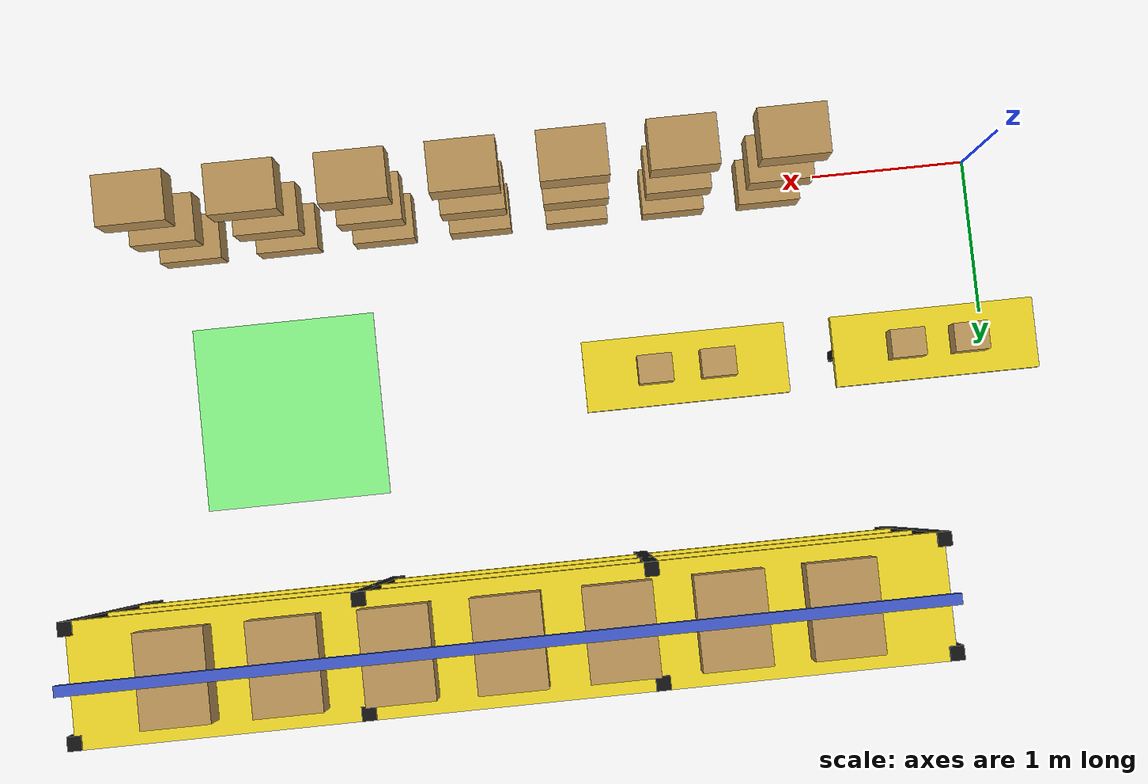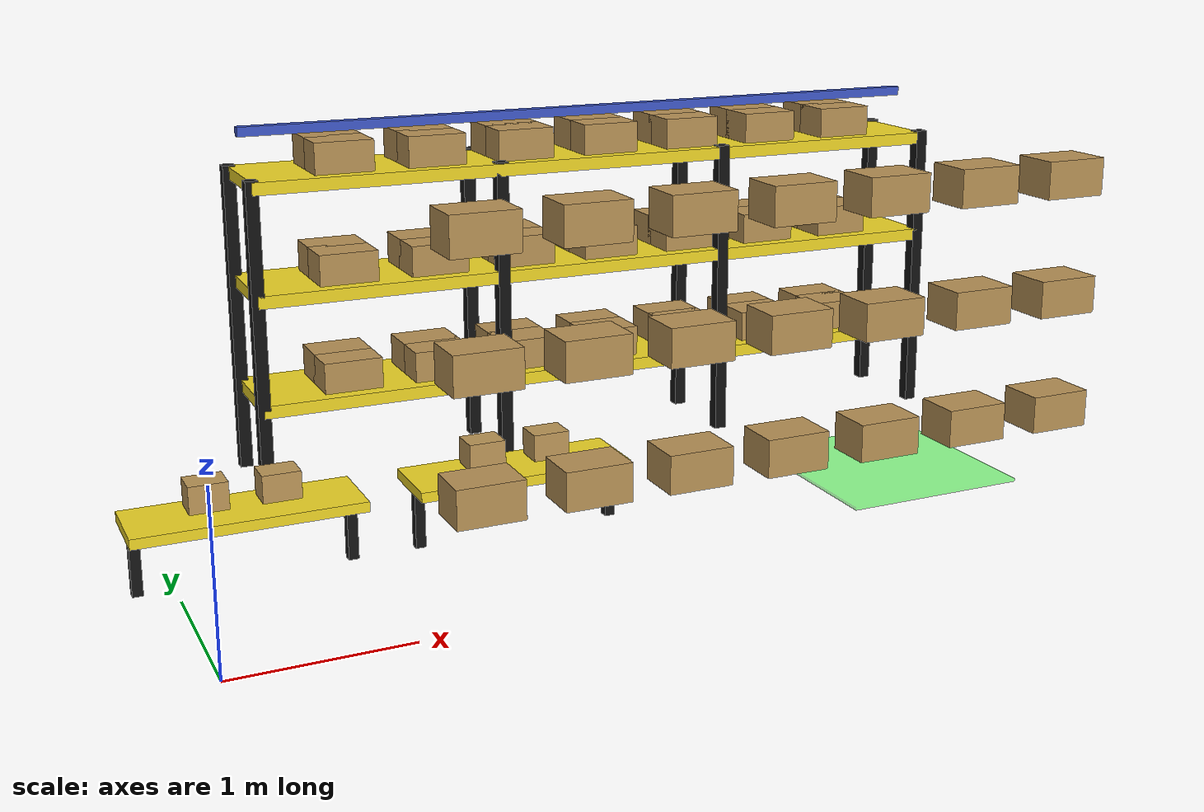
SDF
<sdf version="1.6">
 <world name="fuel_warehouse_world">
  <include><uri>model://sun</uri></include>
  <model name="right_rack_top">
   <static>true</static>
   <pose>3.2 2.7 0 0 0 0.0</pose>
   <link name="deck_0">
    <pose>0 0 0.55 0 0 0</pose>
    <visual name="visual">
     <geometry><box><size>4.8 0.7 0.08</size></box></geometry>
     <material><ambient>0.95 0.85 0.15 1</ambient><diffuse>0.95 0.85 0.15 1</diffuse></material>
    </visual>
    <collision name="collision"><geometry><box><size>4.8 0.7 0.08</size></box></geometry></collision>
   </link>
   <link name="deck_1">
    <pose>0 0 1.25 0 0 0</pose>
    <visual name="visual">
     <geometry><box><size>4.8 0.7 0.08</size></box></geometry>
     <material><ambient>0.95 0.85 0.15 1</ambient><diffuse>0.95 0.85 0.15 1</diffuse></material>
    </visual>
    <collision name="collision"><geometry><box><size>4.8 0.7 0.08</size></box></geometry></collision>
   </link>
   <link name="deck_2">
    <pose>0 0 1.95 0 0 0</pose>
    <visual name="visual">
     <geometry><box><size>4.8 0.7 0.08</size></box></geometry>
     <material><ambient>0.95 0.85 0.15 1</ambient><diffuse>0.95 0.85 0.15 1</diffuse></material>
    </visual>
    <collision name="collision"><geometry><box><size>4.8 0.7 0.08</size></box></geometry></collision>
   </link>
   <link name="leg_0_0">
    <pose>-2.4 -0.31 1.0 0 0 0</pose>
    <visual name="visual">
     <geometry><box><size>0.08 0.08 2.0</size></box></geometry>
     <material><ambient>0.07 0.07 0.07 1</ambient><diffuse>0.07 0.07 0.07 1</diffuse></material>
    </visual>
    <collision name="collision"><geometry><box><size>0.08 0.08 2.0</size></box></geometry></collision>
   </link>
   <link name="leg_0_1">
    <pose>-2.4 0.31 1.0 0 0 0</pose>
    <visual name="visual">
     <geometry><box><size>0.08 0.08 2.0</size></box></geometry>
     <material><ambient>0.07 0.07 0.07 1</ambient><diffuse>0.07 0.07 0.07 1</diffuse></material>
    </visual>
    <collision name="collision"><geometry><box><size>0.08 0.08 2.0</size></box></geometry></collision>
   </link>
   <link name="leg_1_0">
    <pose>-0.7999999999999999 -0.31 1.0 0 0 0</pose>
    <visual name="visual">
     <geometry><box><size>0.08 0.08 2.0</size></box></geometry>
     <material><ambient>0.07 0.07 0.07 1</ambient><diffuse>0.07 0.07 0.07 1</diffuse></material>
    </visual>
    <collision name="collision"><geometry><box><size>0.08 0.08 2.0</size></box></geometry></collision>
   </link>
   <link name="leg_1_1">
    <pose>-0.7999999999999999 0.31 1.0 0 0 0</pose>
    <visual name="visual">
     <geometry><box><size>0.08 0.08 2.0</size></box></geometry>
     <material><ambient>0.07 0.07 0.07 1</ambient><diffuse>0.07 0.07 0.07 1</diffuse></material>
    </visual>
    <collision name="collision"><geometry><box><size>0.08 0.08 2.0</size></box></geometry></collision>
   </link>
   <link name="leg_2_0">
    <pose>0.7999999999999999 -0.31 1.0 0 0 0</pose>
    <visual name="visual">
     <geometry><box><size>0.08 0.08 2.0</size></box></geometry>
     <material><ambient>0.07 0.07 0.07 1</ambient><diffuse>0.07 0.07 0.07 1</diffuse></material>
    </visual>
    <collision name="collision"><geometry><box><size>0.08 0.08 2.0</size></box></geometry></collision>
   </link>
   <link name="leg_2_1">
    <pose>0.7999999999999999 0.31 1.0 0 0 0</pose>
    <visual name="visual">
     <geometry><box><size>0.08 0.08 2.0</size></box></geometry>
     <material><ambient>0.07 0.07 0.07 1</ambient><diffuse>0.07 0.07 0.07 1</diffuse></material>
    </visual>
    <collision name="collision"><geometry><box><size>0.08 0.08 2.0</size></box></geometry></collision>
   </link>
   <link name="leg_3_0">
    <pose>2.4 -0.31 1.0 0 0 0</pose>
    <visual name="visual">
     <geometry><box><size>0.08 0.08 2.0</size></box></geometry>
     <material><ambient>0.07 0.07 0.07 1</ambient><diffuse>0.07 0.07 0.07 1</diffuse></material>
    </visual>
    <collision name="collision"><geometry><box><size>0.08 0.08 2.0</size></box></geometry></collision>
   </link>
   <link name="leg_3_1">
    <pose>2.4 0.31 1.0 0 0 0</pose>
    <visual name="visual">
     <geometry><box><size>0.08 0.08 2.0</size></box></geometry>
     <material><ambient>0.07 0.07 0.07 1</ambient><diffuse>0.07 0.07 0.07 1</diffuse></material>
    </visual>
    <collision name="collision"><geometry><box><size>0.08 0.08 2.0</size></box></geometry></collision>
   </link>
   <link name="top_beam">
    <pose>0 0 2.25 0 0 0</pose>
    <visual name="visual">
     <geometry><box><size>4.8 0.06 0.06</size></box></geometry>
     <material><ambient>0.25 0.35 0.8 1</ambient><diffuse>0.25 0.35 0.8 1</diffuse></material>
    </visual>
   </link>
  </model>
  <model name="right_rack_top_box_0">
   <static>true</static>
   <pose>1.4000000000000001 2.58 0.68 0 0 0</pose>
   <link name="link">
    <visual name="visual">
     <geometry><box><size>0.38 0.28 0.22</size></box></geometry>
     <material><ambient>0.73 0.58 0.34 1</ambient><diffuse>0.73 0.58 0.34 1</diffuse></material>
    </visual>
    <collision name="collision"><geometry><box><size>0.38 0.28 0.22</size></box></geometry></collision>
   </link>
  </model>
  <model name="right_rack_top_box_1">
   <static>true</static>
   <pose>1.4000000000000001 2.8200000000000003 0.68 0 0 0</pose>
   <link name="link">
    <visual name="visual">
     <geometry><box><size>0.38 0.28 0.22</size></box></geometry>
     <material><ambient>0.73 0.58 0.34 1</ambient><diffuse>0.73 0.58 0.34 1</diffuse></material>
    </visual>
    <collision name="collision"><geometry><box><size>0.38 0.28 0.22</size></box></geometry></collision>
   </link>
  </model>
  <model name="right_rack_top_box_2">
   <static>true</static>
   <pose>2.0 2.58 0.68 0 0 0</pose>
   <link name="link">
    <visual name="visual">
     <geometry><box><size>0.38 0.28 0.22</size></box></geometry>
     <material><ambient>0.73 0.58 0.34 1</ambient><diffuse>0.73 0.58 0.34 1</diffuse></material>
    </visual>
    <collision name="collision"><geometry><box><size>0.38 0.28 0.22</size></box></geometry></collision>
   </link>
  </model>
  <model name="right_rack_top_box_3">
   <static>true</static>
   <pose>2.0 2.8200000000000003 0.68 0 0 0</pose>
   <link name="link">
    <visual name="visual">
     <geometry><box><size>0.38 0.28 0.22</size></box></geometry>
     <material><ambient>0.73 0.58 0.34 1</ambient><diffuse>0.73 0.58 0.34 1</diffuse></material>
    </visual>
    <collision name="collision"><geometry><box><size>0.38 0.28 0.22</size></box></geometry></collision>
   </link>
  </model>
  <model name="right_rack_top_box_4">
   <static>true</static>
   <pose>2.6 2.58 0.68 0 0 0</pose>
   <link name="link">
    <visual name="visual">
     <geometry><box><size>0.38 0.28 0.22</size></box></geometry>
     <material><ambient>0.73 0.58 0.34 1</ambient><diffuse>0.73 0.58 0.34 1</diffuse></material>
    </visual>
    <collision name="collision"><geometry><box><size>0.38 0.28 0.22</size></box></geometry></collision>
   </link>
  </model>
  <model name="right_rack_top_box_5">
   <static>true</static>
   <pose>2.6 2.8200000000000003 0.68 0 0 0</pose>
   <link name="link">
    <visual name="visual">
     <geometry><box><size>0.38 0.28 0.22</size></box></geometry>
     <material><ambient>0.73 0.58 0.34 1</ambient><diffuse>0.73 0.58 0.34 1</diffuse></material>
    </visual>
    <collision name="collision"><geometry><box><size>0.38 0.28 0.22</size></box></geometry></collision>
   </link>
  </model>
  <model name="right_rack_top_box_6">
   <static>true</static>
   <pose>3.2 2.58 0.68 0 0 0</pose>
   <link name="link">
    <visual name="visual">
     <geometry><box><size>0.38 0.28 0.22</size></box></geometry>
     <material><ambient>0.73 0.58 0.34 1</ambient><diffuse>0.73 0.58 0.34 1</diffuse></material>
    </visual>
    <collision name="collision"><geometry><box><size>0.38 0.28 0.22</size></box></geometry></collision>
   </link>
  </model>
  <model name="right_rack_top_box_7">
   <static>true</static>
   <pose>3.2 2.8200000000000003 0.68 0 0 0</pose>
   <link name="link">
    <visual name="visual">
     <geometry><box><size>0.38 0.28 0.22</size></box></geometry>
     <material><ambient>0.73 0.58 0.34 1</ambient><diffuse>0.73 0.58 0.34 1</diffuse></material>
    </visual>
    <collision name="collision"><geometry><box><size>0.38 0.28 0.22</size></box></geometry></collision>
   </link>
  </model>
  <model name="right_rack_top_box_8">
   <static>true</static>
   <pose>3.8000000000000003 2.58 0.68 0 0 0</pose>
   <link name="link">
    <visual name="visual">
     <geometry><box><size>0.38 0.28 0.22</size></box></geometry>
     <material><ambient>0.73 0.58 0.34 1</ambient><diffuse>0.73 0.58 0.34 1</diffuse></material>
    </visual>
    <collision name="collision"><geometry><box><size>0.38 0.28 0.22</size></box></geometry></collision>
   </link>
  </model>
  <model name="right_rack_top_box_9">
   <static>true</static>
   <pose>3.8000000000000003 2.8200000000000003 0.68 0 0 0</pose>
   <link name="link">
    <visual name="visual">
     <geometry><box><size>0.38 0.28 0.22</size></box></geometry>
     <material><ambient>0.73 0.58 0.34 1</ambient><diffuse>0.73 0.58 0.34 1</diffuse></material>
    </visual>
    <collision name="collision"><geometry><box><size>0.38 0.28 0.22</size></box></geometry></collision>
   </link>
  </model>
  <model name="right_rack_top_box_10">
   <static>true</static>
   <pose>4.4 2.58 0.68 0 0 0</pose>
   <link name="link">
    <visual name="visual">
     <geometry><box><size>0.38 0.28 0.22</size></box></geometry>
     <material><ambient>0.73 0.58 0.34 1</ambient><diffuse>0.73 0.58 0.34 1</diffuse></material>
    </visual>
    <collision name="collision"><geometry><box><size>0.38 0.28 0.22</size></box></geometry></collision>
   </link>
  </model>
  <model name="right_rack_top_box_11">
   <static>true</static>
   <pose>4.4 2.8200000000000003 0.68 0 0 0</pose>
   <link name="link">
    <visual name="visual">
     <geometry><box><size>0.38 0.28 0.22</size></box></geometry>
     <material><ambient>0.73 0.58 0.34 1</ambient><diffuse>0.73 0.58 0.34 1</diffuse></material>
    </visual>
    <collision name="collision"><geometry><box><size>0.38 0.28 0.22</size></box></geometry></collision>
   </link>
  </model>
  <model name="right_rack_top_box_12">
   <static>true</static>
   <pose>5.0 2.58 0.68 0 0 0</pose>
   <link name="link">
    <visual name="visual">
     <geometry><box><size>0.38 0.28 0.22</size></box></geometry>
     <material><ambient>0.73 0.58 0.34 1</ambient><diffuse>0.73 0.58 0.34 1</diffuse></material>
    </visual>
    <collision name="collision"><geometry><box><size>0.38 0.28 0.22</size></box></geometry></collision>
   </link>
  </model>
  <model name="right_rack_top_box_13">
   <static>true</static>
   <pose>5.0 2.8200000000000003 0.68 0 0 0</pose>
   <link name="link">
    <visual name="visual">
     <geometry><box><size>0.38 0.28 0.22</size></box></geometry>
     <material><ambient>0.73 0.58 0.34 1</ambient><diffuse>0.73 0.58 0.34 1</diffuse></material>
    </visual>
    <collision name="collision"><geometry><box><size>0.38 0.28 0.22</size></box></geometry></collision>
   </link>
  </model>
  <model name="right_rack_top_box_14">
   <static>true</static>
   <pose>1.4000000000000001 2.58 1.38 0 0 0</pose>
   <link name="link">
    <visual name="visual">
     <geometry><box><size>0.38 0.28 0.22</size></box></geometry>
     <material><ambient>0.73 0.58 0.34 1</ambient><diffuse>0.73 0.58 0.34 1</diffuse></material>
    </visual>
    <collision name="collision"><geometry><box><size>0.38 0.28 0.22</size></box></geometry></collision>
   </link>
  </model>
  <model name="right_rack_top_box_15">
   <static>true</static>
   <pose>1.4000000000000001 2.8200000000000003 1.38 0 0 0</pose>
   <link name="link">
    <visual name="visual">
     <geometry><box><size>0.38 0.28 0.22</size></box></geometry>
     <material><ambient>0.73 0.58 0.34 1</ambient><diffuse>0.73 0.58 0.34 1</diffuse></material>
    </visual>
    <collision name="collision"><geometry><box><size>0.38 0.28 0.22</size></box></geometry></collision>
   </link>
  </model>
  <model name="right_rack_top_box_16">
   <static>true</static>
   <pose>2.0 2.58 1.38 0 0 0</pose>
   <link name="link">
    <visual name="visual">
     <geometry><box><size>0.38 0.28 0.22</size></box></geometry>
     <material><ambient>0.73 0.58 0.34 1</ambient><diffuse>0.73 0.58 0.34 1</diffuse></material>
    </visual>
    <collision name="collision"><geometry><box><size>0.38 0.28 0.22</size></box></geometry></collision>
   </link>
  </model>
  <model name="right_rack_top_box_17">
   <static>true</static>
   <pose>2.0 2.8200000000000003 1.38 0 0 0</pose>
   <link name="link">
    <visual name="visual">
     <geometry><box><size>0.38 0.28 0.22</size></box></geometry>
     <material><ambient>0.73 0.58 0.34 1</ambient><diffuse>0.73 0.58 0.34 1</diffuse></material>
    </visual>
    <collision name="collision"><geometry><box><size>0.38 0.28 0.22</size></box></geometry></collision>
   </link>
  </model>
  <model name="right_rack_top_box_18">
   <static>true</static>
   <pose>2.6 2.58 1.38 0 0 0</pose>
   <link name="link">
    <visual name="visual">
     <geometry><box><size>0.38 0.28 0.22</size></box></geometry>
     <material><ambient>0.73 0.58 0.34 1</ambient><diffuse>0.73 0.58 0.34 1</diffuse></material>
    </visual>
    <collision name="collision"><geometry><box><size>0.38 0.28 0.22</size></box></geometry></collision>
   </link>
  </model>
  <model name="right_rack_top_box_19">
   <static>true</static>
   <pose>2.6 2.8200000000000003 1.38 0 0 0</pose>
   <link name="link">
    <visual name="visual">
     <geometry><box><size>0.38 0.28 0.22</size></box></geometry>
     <material><ambient>0.73 0.58 0.34 1</ambient><diffuse>0.73 0.58 0.34 1</diffuse></material>
    </visual>
    <collision name="collision"><geometry><box><size>0.38 0.28 0.22</size></box></geometry></collision>
   </link>
  </model>
  <model name="right_rack_top_box_20">
   <static>true</static>
   <pose>3.2 2.58 1.38 0 0 0</pose>
   <link name="link">
    <visual name="visual">
     <geometry><box><size>0.38 0.28 0.22</size></box></geometry>
     <material><ambient>0.73 0.58 0.34 1</ambient><diffuse>0.73 0.58 0.34 1</diffuse></material>
    </visual>
    <collision name="collision"><geometry><box><size>0.38 0.28 0.22</size></box></geometry></collision>
   </link>
  </model>
  <model name="right_rack_top_box_21">
   <static>true</static>
   <pose>3.2 2.8200000000000003 1.38 0 0 0</pose>
   <link name="link">
    <visual name="visual">
     <geometry><box><size>0.38 0.28 0.22</size></box></geometry>
     <material><ambient>0.73 0.58 0.34 1</ambient><diffuse>0.73 0.58 0.34 1</diffuse></material>
    </visual>
    <collision name="collision"><geometry><box><size>0.38 0.28 0.22</size></box></geometry></collision>
   </link>
  </model>
  <model name="right_rack_top_box_22">
   <static>true</static>
   <pose>3.8000000000000003 2.58 1.38 0 0 0</pose>
   <link name="link">
    <visual name="visual">
     <geometry><box><size>0.38 0.28 0.22</size></box></geometry>
     <material><ambient>0.73 0.58 0.34 1</ambient><diffuse>0.73 0.58 0.34 1</diffuse></material>
    </visual>
    <collision name="collision"><geometry><box><size>0.38 0.28 0.22</size></box></geometry></collision>
   </link>
  </model>
  <model name="right_rack_top_box_23">
   <static>true</static>
   <pose>3.8000000000000003 2.8200000000000003 1.38 0 0 0</pose>
   <link name="link">
    <visual name="visual">
     <geometry><box><size>0.38 0.28 0.22</size></box></geometry>
     <material><ambient>0.73 0.58 0.34 1</ambient><diffuse>0.73 0.58 0.34 1</diffuse></material>
    </visual>
    <collision name="collision"><geometry><box><size>0.38 0.28 0.22</size></box></geometry></collision>
   </link>
  </model>
  <model name="right_rack_top_box_24">
   <static>true</static>
   <pose>4.4 2.58 1.38 0 0 0</pose>
   <link name="link">
    <visual name="visual">
     <geometry><box><size>0.38 0.28 0.22</size></box></geometry>
     <material><ambient>0.73 0.58 0.34 1</ambient><diffuse>0.73 0.58 0.34 1</diffuse></material>
    </visual>
    <collision name="collision"><geometry><box><size>0.38 0.28 0.22</size></box></geometry></collision>
   </link>
  </model>
  <model name="right_rack_top_box_25">
   <static>true</static>
   <pose>4.4 2.8200000000000003 1.38 0 0 0</pose>
   <link name="link">
    <visual name="visual">
     <geometry><box><size>0.38 0.28 0.22</size></box></geometry>
     <material><ambient>0.73 0.58 0.34 1</ambient><diffuse>0.73 0.58 0.34 1</diffuse></material>
    </visual>
    <collision name="collision"><geometry><box><size>0.38 0.28 0.22</size></box></geometry></collision>
   </link>
  </model>
  <model name="right_rack_top_box_26">
   <static>true</static>
   <pose>5.0 2.58 1.38 0 0 0</pose>
   <link name="link">
    <visual name="visual">
     <geometry><box><size>0.38 0.28 0.22</size></box></geometry>
     <material><ambient>0.73 0.58 0.34 1</ambient><diffuse>0.73 0.58 0.34 1</diffuse></material>
    </visual>
    <collision name="collision"><geometry><box><size>0.38 0.28 0.22</size></box></geometry></collision>
   </link>
  </model>
  <model name="right_rack_top_box_27">
   <static>true</static>
   <pose>5.0 2.8200000000000003 1.38 0 0 0</pose>
   <link name="link">
    <visual name="visual">
     <geometry><box><size>0.38 0.28 0.22</size></box></geometry>
     <material><ambient>0.73 0.58 0.34 1</ambient><diffuse>0.73 0.58 0.34 1</diffuse></material>
    </visual>
    <collision name="collision"><geometry><box><size>0.38 0.28 0.22</size></box></geometry></collision>
   </link>
  </model>
  <model name="right_rack_top_box_28">
   <static>true</static>
   <pose>1.4000000000000001 2.58 2.08 0 0 0</pose>
   <link name="link">
    <visual name="visual">
     <geometry><box><size>0.38 0.28 0.22</size></box></geometry>
     <material><ambient>0.73 0.58 0.34 1</ambient><diffuse>0.73 0.58 0.34 1</diffuse></material>
    </visual>
    <collision name="collision"><geometry><box><size>0.38 0.28 0.22</size></box></geometry></collision>
   </link>
  </model>
  <model name="right_rack_top_box_29">
   <static>true</static>
   <pose>1.4000000000000001 2.8200000000000003 2.08 0 0 0</pose>
   <link name="link">
    <visual name="visual">
     <geometry><box><size>0.38 0.28 0.22</size></box></geometry>
     <material><ambient>0.73 0.58 0.34 1</ambient><diffuse>0.73 0.58 0.34 1</diffuse></material>
    </visual>
    <collision name="collision"><geometry><box><size>0.38 0.28 0.22</size></box></geometry></collision>
   </link>
  </model>
  <model name="right_rack_top_box_30">
   <static>true</static>
   <pose>2.0 2.58 2.08 0 0 0</pose>
   <link name="link">
    <visual name="visual">
     <geometry><box><size>0.38 0.28 0.22</size></box></geometry>
     <material><ambient>0.73 0.58 0.34 1</ambient><diffuse>0.73 0.58 0.34 1</diffuse></material>
    </visual>
    <collision name="collision"><geometry><box><size>0.38 0.28 0.22</size></box></geometry></collision>
   </link>
  </model>
  <model name="right_rack_top_box_31">
   <static>true</static>
   <pose>2.0 2.8200000000000003 2.08 0 0 0</pose>
   <link name="link">
    <visual name="visual">
     <geometry><box><size>0.38 0.28 0.22</size></box></geometry>
     <material><ambient>0.73 0.58 0.34 1</ambient><diffuse>0.73 0.58 0.34 1</diffuse></material>
    </visual>
    <collision name="collision"><geometry><box><size>0.38 0.28 0.22</size></box></geometry></collision>
   </link>
  </model>
  <model name="right_rack_top_box_32">
   <static>true</static>
   <pose>2.6 2.58 2.08 0 0 0</pose>
   <link name="link">
    <visual name="visual">
     <geometry><box><size>0.38 0.28 0.22</size></box></geometry>
     <material><ambient>0.73 0.58 0.34 1</ambient><diffuse>0.73 0.58 0.34 1</diffuse></material>
    </visual>
    <collision name="collision"><geometry><box><size>0.38 0.28 0.22</size></box></geometry></collision>
   </link>
  </model>
  <model name="right_rack_top_box_33">
   <static>true</static>
   <pose>2.6 2.8200000000000003 2.08 0 0 0</pose>
   <link name="link">
    <visual name="visual">
     <geometry><box><size>0.38 0.28 0.22</size></box></geometry>
     <material><ambient>0.73 0.58 0.34 1</ambient><diffuse>0.73 0.58 0.34 1</diffuse></material>
    </visual>
    <collision name="collision"><geometry><box><size>0.38 0.28 0.22</size></box></geometry></collision>
   </link>
  </model>
  <model name="right_rack_top_box_34">
   <static>true</static>
   <pose>3.2 2.58 2.08 0 0 0</pose>
   <link name="link">
    <visual name="visual">
     <geometry><box><size>0.38 0.28 0.22</size></box></geometry>
     <material><ambient>0.73 0.58 0.34 1</ambient><diffuse>0.73 0.58 0.34 1</diffuse></material>
    </visual>
    <collision name="collision"><geometry><box><size>0.38 0.28 0.22</size></box></geometry></collision>
   </link>
  </model>
  <model name="right_rack_top_box_35">
   <static>true</static>
   <pose>3.2 2.8200000000000003 2.08 0 0 0</pose>
   <link name="link">
    <visual name="visual">
     <geometry><box><size>0.38 0.28 0.22</size></box></geometry>
     <material><ambient>0.73 0.58 0.34 1</ambient><diffuse>0.73 0.58 0.34 1</diffuse></material>
    </visual>
    <collision name="collision"><geometry><box><size>0.38 0.28 0.22</size></box></geometry></collision>
   </link>
  </model>
  <model name="right_rack_top_box_36">
   <static>true</static>
   <pose>3.8000000000000003 2.58 2.08 0 0 0</pose>
   <link name="link">
    <visual name="visual">
     <geometry><box><size>0.38 0.28 0.22</size></box></geometry>
     <material><ambient>0.73 0.58 0.34 1</ambient><diffuse>0.73 0.58 0.34 1</diffuse></material>
    </visual>
    <collision name="collision"><geometry><box><size>0.38 0.28 0.22</size></box></geometry></collision>
   </link>
  </model>
  <model name="right_rack_top_box_37">
   <static>true</static>
   <pose>3.8000000000000003 2.8200000000000003 2.08 0 0 0</pose>
   <link name="link">
    <visual name="visual">
     <geometry><box><size>0.38 0.28 0.22</size></box></geometry>
     <material><ambient>0.73 0.58 0.34 1</ambient><diffuse>0.73 0.58 0.34 1</diffuse></material>
    </visual>
    <collision name="collision"><geometry><box><size>0.38 0.28 0.22</size></box></geometry></collision>
   </link>
  </model>
  <model name="right_rack_top_box_38">
   <static>true</static>
   <pose>4.4 2.58 2.08 0 0 0</pose>
   <link name="link">
    <visual name="visual">
     <geometry><box><size>0.38 0.28 0.22</size></box></geometry>
     <material><ambient>0.73 0.58 0.34 1</ambient><diffuse>0.73 0.58 0.34 1</diffuse></material>
    </visual>
    <collision name="collision"><geometry><box><size>0.38 0.28 0.22</size></box></geometry></collision>
   </link>
  </model>
  <model name="right_rack_top_box_39">
   <static>true</static>
   <pose>4.4 2.8200000000000003 2.08 0 0 0</pose>
   <link name="link">
    <visual name="visual">
     <geometry><box><size>0.38 0.28 0.22</size></box></geometry>
     <material><ambient>0.73 0.58 0.34 1</ambient><diffuse>0.73 0.58 0.34 1</diffuse></material>
    </visual>
    <collision name="collision"><geometry><box><size>0.38 0.28 0.22</size></box></geometry></collision>
   </link>
  </model>
  <model name="right_rack_top_box_40">
   <static>true</static>
   <pose>5.0 2.58 2.08 0 0 0</pose>
   <link name="link">
    <visual name="visual">
     <geometry><box><size>0.38 0.28 0.22</size></box></geometry>
     <material><ambient>0.73 0.58 0.34 1</ambient><diffuse>0.73 0.58 0.34 1</diffuse></material>
    </visual>
    <collision name="collision"><geometry><box><size>0.38 0.28 0.22</size></box></geometry></collision>
   </link>
  </model>
  <model name="right_rack_top_box_41">
   <static>true</static>
   <pose>5.0 2.8200000000000003 2.08 0 0 0</pose>
   <link name="link">
    <visual name="visual">
     <geometry><box><size>0.38 0.28 0.22</size></box></geometry>
     <material><ambient>0.73 0.58 0.34 1</ambient><diffuse>0.73 0.58 0.34 1</diffuse></material>
    </visual>
    <collision name="collision"><geometry><box><size>0.38 0.28 0.22</size></box></geometry></collision>
   </link>
  </model>
  <model name="right_rack_middle_box_1">
   <static>true</static>
   <pose>1.4000000000000001 0.12 0.68 0 0 0</pose>
   <link name="link">
    <visual name="visual">
     <geometry><box><size>0.38 0.28 0.22</size></box></geometry>
     <material><ambient>0.73 0.58 0.34 1</ambient><diffuse>0.73 0.58 0.34 1</diffuse></material>
    </visual>
    <collision name="collision"><geometry><box><size>0.38 0.28 0.22</size></box></geometry></collision>
   </link>
  </model>
  <model name="right_rack_middle_box_3">
   <static>true</static>
   <pose>2.0 0.12 0.68 0 0 0</pose>
   <link name="link">
    <visual name="visual">
     <geometry><box><size>0.38 0.28 0.22</size></box></geometry>
     <material><ambient>0.73 0.58 0.34 1</ambient><diffuse>0.73 0.58 0.34 1</diffuse></material>
    </visual>
    <collision name="collision"><geometry><box><size>0.38 0.28 0.22</size></box></geometry></collision>
   </link>
  </model>
  <model name="right_rack_middle_box_5">
   <static>true</static>
   <pose>2.6 0.12 0.68 0 0 0</pose>
   <link name="link">
    <visual name="visual">
     <geometry><box><size>0.38 0.28 0.22</size></box></geometry>
     <material><ambient>0.73 0.58 0.34 1</ambient><diffuse>0.73 0.58 0.34 1</diffuse></material>
    </visual>
    <collision name="collision"><geometry><box><size>0.38 0.28 0.22</size></box></geometry></collision>
   </link>
  </model>
  <model name="right_rack_middle_box_7">
   <static>true</static>
   <pose>3.2 0.12 0.68 0 0 0</pose>
   <link name="link">
    <visual name="visual">
     <geometry><box><size>0.38 0.28 0.22</size></box></geometry>
     <material><ambient>0.73 0.58 0.34 1</ambient><diffuse>0.73 0.58 0.34 1</diffuse></material>
    </visual>
    <collision name="collision"><geometry><box><size>0.38 0.28 0.22</size></box></geometry></collision>
   </link>
  </model>
  <model name="right_rack_middle_box_9">
   <static>true</static>
   <pose>3.8000000000000003 0.12 0.68 0 0 0</pose>
   <link name="link">
    <visual name="visual">
     <geometry><box><size>0.38 0.28 0.22</size></box></geometry>
     <material><ambient>0.73 0.58 0.34 1</ambient><diffuse>0.73 0.58 0.34 1</diffuse></material>
    </visual>
    <collision name="collision"><geometry><box><size>0.38 0.28 0.22</size></box></geometry></collision>
   </link>
  </model>
  <model name="right_rack_middle_box_11">
   <static>true</static>
   <pose>4.4 0.12 0.68 0 0 0</pose>
   <link name="link">
    <visual name="visual">
     <geometry><box><size>0.38 0.28 0.22</size></box></geometry>
     <material><ambient>0.73 0.58 0.34 1</ambient><diffuse>0.73 0.58 0.34 1</diffuse></material>
    </visual>
    <collision name="collision"><geometry><box><size>0.38 0.28 0.22</size></box></geometry></collision>
   </link>
  </model>
  <model name="right_rack_middle_box_13">
   <static>true</static>
   <pose>5.0 0.12 0.68 0 0 0</pose>
   <link name="link">
    <visual name="visual">
     <geometry><box><size>0.38 0.28 0.22</size></box></geometry>
     <material><ambient>0.73 0.58 0.34 1</ambient><diffuse>0.73 0.58 0.34 1</diffuse></material>
    </visual>
    <collision name="collision"><geometry><box><size>0.38 0.28 0.22</size></box></geometry></collision>
   </link>
  </model>
  <model name="right_rack_middle_box_15">
   <static>true</static>
   <pose>1.4000000000000001 0.12 1.38 0 0 0</pose>
   <link name="link">
    <visual name="visual">
     <geometry><box><size>0.38 0.28 0.22</size></box></geometry>
     <material><ambient>0.73 0.58 0.34 1</ambient><diffuse>0.73 0.58 0.34 1</diffuse></material>
    </visual>
    <collision name="collision"><geometry><box><size>0.38 0.28 0.22</size></box></geometry></collision>
   </link>
  </model>
  <model name="right_rack_middle_box_17">
   <static>true</static>
   <pose>2.0 0.12 1.38 0 0 0</pose>
   <link name="link">
    <visual name="visual">
     <geometry><box><size>0.38 0.28 0.22</size></box></geometry>
     <material><ambient>0.73 0.58 0.34 1</ambient><diffuse>0.73 0.58 0.34 1</diffuse></material>
    </visual>
    <collision name="collision"><geometry><box><size>0.38 0.28 0.22</size></box></geometry></collision>
   </link>
  </model>
  <model name="right_rack_middle_box_19">
   <static>true</static>
   <pose>2.6 0.12 1.38 0 0 0</pose>
   <link name="link">
    <visual name="visual">
     <geometry><box><size>0.38 0.28 0.22</size></box></geometry>
     <material><ambient>0.73 0.58 0.34 1</ambient><diffuse>0.73 0.58 0.34 1</diffuse></material>
    </visual>
    <collision name="collision"><geometry><box><size>0.38 0.28 0.22</size></box></geometry></collision>
   </link>
  </model>
  <model name="right_rack_middle_box_21">
   <static>true</static>
   <pose>3.2 0.12 1.38 0 0 0</pose>
   <link name="link">
    <visual name="visual">
     <geometry><box><size>0.38 0.28 0.22</size></box></geometry>
     <material><ambient>0.73 0.58 0.34 1</ambient><diffuse>0.73 0.58 0.34 1</diffuse></material>
    </visual>
    <collision name="collision"><geometry><box><size>0.38 0.28 0.22</size></box></geometry></collision>
   </link>
  </model>
  <model name="right_rack_middle_box_23">
   <static>true</static>
   <pose>3.8000000000000003 0.12 1.38 0 0 0</pose>
   <link name="link">
    <visual name="visual">
     <geometry><box><size>0.38 0.28 0.22</size></box></geometry>
     <material><ambient>0.73 0.58 0.34 1</ambient><diffuse>0.73 0.58 0.34 1</diffuse></material>
    </visual>
    <collision name="collision"><geometry><box><size>0.38 0.28 0.22</size></box></geometry></collision>
   </link>
  </model>
  <model name="right_rack_middle_box_25">
   <static>true</static>
   <pose>4.4 0.12 1.38 0 0 0</pose>
   <link name="link">
    <visual name="visual">
     <geometry><box><size>0.38 0.28 0.22</size></box></geometry>
     <material><ambient>0.73 0.58 0.34 1</ambient><diffuse>0.73 0.58 0.34 1</diffuse></material>
    </visual>
    <collision name="collision"><geometry><box><size>0.38 0.28 0.22</size></box></geometry></collision>
   </link>
  </model>
  <model name="right_rack_middle_box_27">
   <static>true</static>
   <pose>5.0 0.12 1.38 0 0 0</pose>
   <link name="link">
    <visual name="visual">
     <geometry><box><size>0.38 0.28 0.22</size></box></geometry>
     <material><ambient>0.73 0.58 0.34 1</ambient><diffuse>0.73 0.58 0.34 1</diffuse></material>
    </visual>
    <collision name="collision"><geometry><box><size>0.38 0.28 0.22</size></box></geometry></collision>
   </link>
  </model>
  <model name="right_rack_middle_box_29">
   <static>true</static>
   <pose>1.4000000000000001 0.12 2.08 0 0 0</pose>
   <link name="link">
    <visual name="visual">
     <geometry><box><size>0.38 0.28 0.22</size></box></geometry>
     <material><ambient>0.73 0.58 0.34 1</ambient><diffuse>0.73 0.58 0.34 1</diffuse></material>
    </visual>
    <collision name="collision"><geometry><box><size>0.38 0.28 0.22</size></box></geometry></collision>
   </link>
  </model>
  <model name="right_rack_middle_box_31">
   <static>true</static>
   <pose>2.0 0.12 2.08 0 0 0</pose>
   <link name="link">
    <visual name="visual">
     <geometry><box><size>0.38 0.28 0.22</size></box></geometry>
     <material><ambient>0.73 0.58 0.34 1</ambient><diffuse>0.73 0.58 0.34 1</diffuse></material>
    </visual>
    <collision name="collision"><geometry><box><size>0.38 0.28 0.22</size></box></geometry></collision>
   </link>
  </model>
  <model name="right_rack_middle_box_33">
   <static>true</static>
   <pose>2.6 0.12 2.08 0 0 0</pose>
   <link name="link">
    <visual name="visual">
     <geometry><box><size>0.38 0.28 0.22</size></box></geometry>
     <material><ambient>0.73 0.58 0.34 1</ambient><diffuse>0.73 0.58 0.34 1</diffuse></material>
    </visual>
    <collision name="collision"><geometry><box><size>0.38 0.28 0.22</size></box></geometry></collision>
   </link>
  </model>
  <model name="right_rack_middle_box_35">
   <static>true</static>
   <pose>3.2 0.12 2.08 0 0 0</pose>
   <link name="link">
    <visual name="visual">
     <geometry><box><size>0.38 0.28 0.22</size></box></geometry>
     <material><ambient>0.73 0.58 0.34 1</ambient><diffuse>0.73 0.58 0.34 1</diffuse></material>
    </visual>
    <collision name="collision"><geometry><box><size>0.38 0.28 0.22</size></box></geometry></collision>
   </link>
  </model>
  <model name="right_rack_middle_box_37">
   <static>true</static>
   <pose>3.8000000000000003 0.12 2.08 0 0 0</pose>
   <link name="link">
    <visual name="visual">
     <geometry><box><size>0.38 0.28 0.22</size></box></geometry>
     <material><ambient>0.73 0.58 0.34 1</ambient><diffuse>0.73 0.58 0.34 1</diffuse></material>
    </visual>
    <collision name="collision"><geometry><box><size>0.38 0.28 0.22</size></box></geometry></collision>
   </link>
  </model>
  <model name="right_rack_middle_box_39">
   <static>true</static>
   <pose>4.4 0.12 2.08 0 0 0</pose>
   <link name="link">
    <visual name="visual">
     <geometry><box><size>0.38 0.28 0.22</size></box></geometry>
     <material><ambient>0.73 0.58 0.34 1</ambient><diffuse>0.73 0.58 0.34 1</diffuse></material>
    </visual>
    <collision name="collision"><geometry><box><size>0.38 0.28 0.22</size></box></geometry></collision>
   </link>
  </model>
  <model name="right_rack_middle_box_41">
   <static>true</static>
   <pose>5.0 0.12 2.08 0 0 0</pose>
   <link name="link">
    <visual name="visual">
     <geometry><box><size>0.38 0.28 0.22</size></box></geometry>
     <material><ambient>0.73 0.58 0.34 1</ambient><diffuse>0.73 0.58 0.34 1</diffuse></material>
    </visual>
    <collision name="collision"><geometry><box><size>0.38 0.28 0.22</size></box></geometry></collision>
   </link>
  </model>
  <model name="center_low_rack_1">
   <static>true</static>
   <pose>0.4 1.2 0 0 0 0.0</pose>
   <link name="link">
    <visual name="top">
     <pose>0 0 0.38 0 0 0</pose>
     <geometry><box><size>1.3 0.45 0.06</size></box></geometry>
     <material><ambient>0.95 0.85 0.15 1</ambient><diffuse>0.95 0.85 0.15 1</diffuse></material>
    </visual>
    <visual name="leg1">
     <pose>-0.6 0 0.19 0 0 0</pose>
     <geometry><box><size>0.06 0.06 0.38</size></box></geometry>
     <material><ambient>0.08 0.08 0.08 1</ambient><diffuse>0.08 0.08 0.08 1</diffuse></material>
    </visual>
    <visual name="leg2">
     <pose>0.6 0 0.19 0 0 0</pose>
     <geometry><box><size>0.06 0.06 0.38</size></box></geometry>
     <material><ambient>0.08 0.08 0.08 1</ambient><diffuse>0.08 0.08 0.08 1</diffuse></material>
    </visual>
    <collision name="collision">
     <pose>0 0 0.19 0 0 0</pose>
     <geometry><box><size>1.3 0.45 0.38</size></box></geometry>
    </collision>
   </link>
  </model>
  <model name="center_low_box_1_a">
   <static>true</static>
   <pose>0.2 1.2 0.52 0 0 0</pose>
   <link name="link">
    <visual name="visual">
     <geometry><box><size>0.22 0.18 0.16</size></box></geometry>
     <material><ambient>0.75 0.60 0.35 1</ambient><diffuse>0.75 0.60 0.35 1</diffuse></material>
    </visual>
    <collision name="collision"><geometry><box><size>0.22 0.18 0.16</size></box></geometry></collision>
   </link>
  </model>
  <model name="center_low_box_1_b">
   <static>true</static>
   <pose>0.6000000000000001 1.2 0.52 0 0 0</pose>
   <link name="link">
    <visual name="visual">
     <geometry><box><size>0.22 0.18 0.16</size></box></geometry>
     <material><ambient>0.75 0.60 0.35 1</ambient><diffuse>0.75 0.60 0.35 1</diffuse></material>
    </visual>
    <collision name="collision"><geometry><box><size>0.22 0.18 0.16</size></box></geometry></collision>
   </link>
  </model>
  <model name="center_low_rack_2">
   <static>true</static>
   <pose>2.0 1.2 0 0 0 0.0</pose>
   <link name="link">
    <visual name="top">
     <pose>0 0 0.38 0 0 0</pose>
     <geometry><box><size>1.3 0.45 0.06</size></box></geometry>
     <material><ambient>0.95 0.85 0.15 1</ambient><diffuse>0.95 0.85 0.15 1</diffuse></material>
    </visual>
    <visual name="leg1">
     <pose>-0.6 0 0.19 0 0 0</pose>
     <geometry><box><size>0.06 0.06 0.38</size></box></geometry>
     <material><ambient>0.08 0.08 0.08 1</ambient><diffuse>0.08 0.08 0.08 1</diffuse></material>
    </visual>
    <visual name="leg2">
     <pose>0.6 0 0.19 0 0 0</pose>
     <geometry><box><size>0.06 0.06 0.38</size></box></geometry>
     <material><ambient>0.08 0.08 0.08 1</ambient><diffuse>0.08 0.08 0.08 1</diffuse></material>
    </visual>
    <collision name="collision">
     <pose>0 0 0.19 0 0 0</pose>
     <geometry><box><size>1.3 0.45 0.38</size></box></geometry>
    </collision>
   </link>
  </model>
  <model name="center_low_box_2_a">
   <static>true</static>
   <pose>1.8 1.2 0.52 0 0 0</pose>
   <link name="link">
    <visual name="visual">
     <geometry><box><size>0.22 0.18 0.16</size></box></geometry>
     <material><ambient>0.75 0.60 0.35 1</ambient><diffuse>0.75 0.60 0.35 1</diffuse></material>
    </visual>
    <collision name="collision"><geometry><box><size>0.22 0.18 0.16</size></box></geometry></collision>
   </link>
  </model>
  <model name="center_low_box_2_b">
   <static>true</static>
   <pose>2.2 1.2 0.52 0 0 0</pose>
   <link name="link">
    <visual name="visual">
     <geometry><box><size>0.22 0.18 0.16</size></box></geometry>
     <material><ambient>0.75 0.60 0.35 1</ambient><diffuse>0.75 0.60 0.35 1</diffuse></material>
    </visual>
    <collision name="collision"><geometry><box><size>0.22 0.18 0.16</size></box></geometry></collision>
   </link>
  </model>
  <model name="drop_zone1">
   <static>true</static>
   <pose>4.6 1.2 0.01 0 0 0</pose>
   <link name="link">
    <visual name="visual">
     <geometry><box><size>1.2 1.2 0.02</size></box></geometry>
     <material><ambient>0 1 0 0.45</ambient><diffuse>0 1 0 0.45</diffuse></material>
    </visual>
   </link>
  </model>
 </world>
</sdf>
